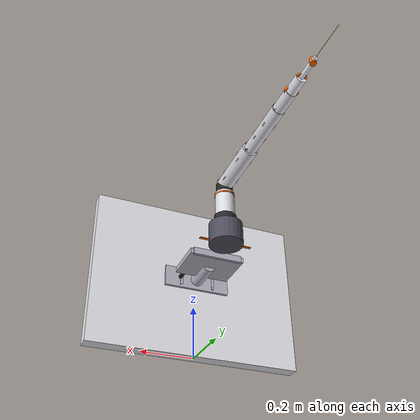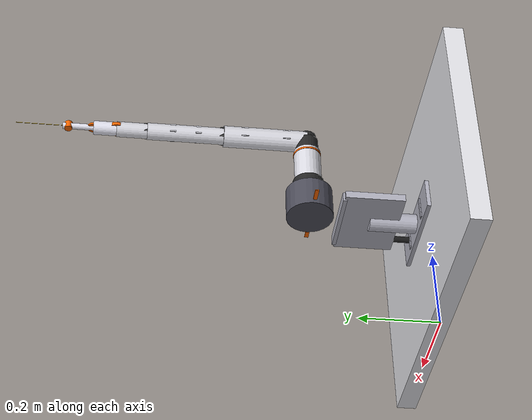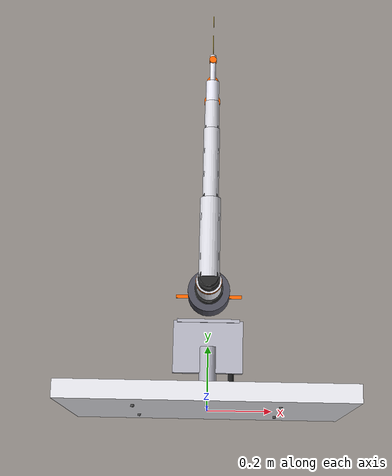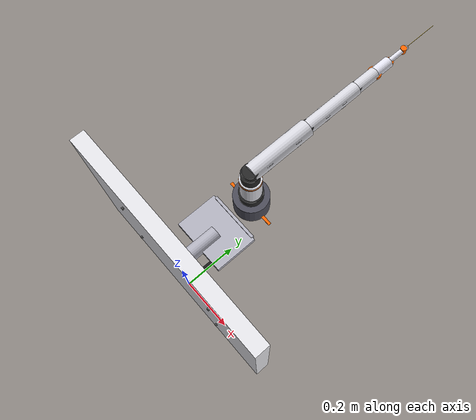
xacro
<?xml version="1.0"?>
<robot xmlns:xacro="http://www.ros.org/wiki/xacro" name="medical_grade_neurosurgical_robot">

  <!-- Properties for easy modification -->
  <xacro:property name="PI" value="3.14159"/>

  <!-- Wall plate properties -->
  <xacro:property name="plate_width" value="0.8"/>
  <xacro:property name="plate_height" value="0.6"/>
  <xacro:property name="plate_thickness" value="0.05"/>

  <!-- Wall mounting properties -->
  <xacro:property name="wall_mount_height" value="0.15"/>
  <xacro:property name="wall_mount_width" value="0.20"/>
  <xacro:property name="wall_mount_depth" value="0.12"/>
  <xacro:property name="wall_bracket_height" value="0.08"/>
  <xacro:property name="wall_bracket_width" value="0.25"/>
  <xacro:property name="wall_bracket_thickness" value="0.02"/>

  <!-- Realistic medical robot proportions -->
  <xacro:property name="base_height" value="0.08"/>
  <xacro:property name="base_radius" value="0.06"/>
  <xacro:property name="base_motor_radius" value="0.04"/>
  <xacro:property name="base_motor_height" value="0.035"/>

  <xacro:property name="shoulder_length" value="0.10"/>
  <xacro:property name="shoulder_radius" value="0.035"/>
  <xacro:property name="shoulder_motor_radius" value="0.03"/>
  <xacro:property name="shoulder_motor_height" value="0.04"/>

  <xacro:property name="upper_arm_length" value="0.22"/>
  <xacro:property name="upper_arm_radius" value="0.028"/>
  <xacro:property name="upper_arm_motor_radius" value="0.025"/>
  <xacro:property name="upper_arm_motor_height" value="0.035"/>

  <xacro:property name="forearm_length" value="0.20"/>
  <xacro:property name="forearm_radius" value="0.022"/>
  <xacro:property name="forearm_motor_radius" value="0.02"/>
  <xacro:property name="forearm_motor_height" value="0.03"/>

  <xacro:property name="wrist_length" value="0.08"/>
  <xacro:property name="wrist_radius" value="0.02"/>
  <xacro:property name="wrist_motor_radius" value="0.018"/>
  <xacro:property name="wrist_motor_height" value="0.025"/>

  <xacro:property name="hand_length" value="0.06"/>
  <xacro:property name="hand_radius" value="0.018"/>
  <xacro:property name="hand_motor_radius" value="0.015"/>
  <xacro:property name="hand_motor_height" value="0.02"/>

  <!-- Tool housing properties (contains the extendable needle) -->
  <xacro:property name="tool_housing_length" value="0.08"/>
  <xacro:property name="tool_housing_radius" value="0.008"/>

  <!-- Needle properties (the extendable 7th DOF) -->
  <xacro:property name="needle_radius" value="0.0005"/>
  <xacro:property name="needle_max_extension" value="0.12"/>

  <!-- Medical-grade materials -->
  <material name="medical_base">
    <color rgba="0.3 0.3 0.35 1.0"/>
  </material>

  <material name="medical_grey">
    <color rgba="0.85 0.85 0.88 1.0"/>
  </material>

  <material name="motor_black">
    <color rgba="0.15 0.15 0.15 1.0"/>
  </material>

  <material name="surgical_steel">
    <color rgba="0.9 0.9 0.95 1.0"/>
  </material>

  <material name="safety_orange">
    <color rgba="1.0 0.4 0.0 1.0"/>
  </material>

  <material name="cable_black">
    <color rgba="0.1 0.1 0.1 1.0"/>
  </material>

  <!-- Needle material (highly visible for safety) -->
  <material name="needle_gold">
    <color rgba="1.0 0.8 0.0 1.0"/>
  </material>

  <!-- Wall mount material -->
  <material name="wall_mount_steel">
    <color rgba="0.7 0.7 0.75 1.0"/>
  </material>

  <!-- Wall plate material -->
  <material name="wall_surface">
    <color rgba="0.9 0.9 0.92 1.0"/>
  </material>

  <material name="mounting_holes">
    <color rgba="0.3 0.3 0.3 1.0"/>
  </material>

  <!-- World Link (FIXED - Wall bottom now sits at grid level) -->
  <link name="world">
    <!-- Main wall plate surface - MOVED UP so bottom sits at Z=0 -->
    <visual>
      <origin xyz="0 0 ${plate_height/2}" rpy="0 0 0"/>
      <geometry>
        <box size="${plate_width} ${plate_thickness} ${plate_height}"/>
      </geometry>
      <material name="wall_surface"/>
    </visual>

    <!-- Mounting holes (decorative) - ADJUSTED for new wall position -->
    <visual>
      <origin xyz="0.2 ${-plate_thickness/2 - 0.002} ${plate_height/2 + 0.15}" rpy="${PI/2} 0 0"/>
      <geometry>
        <cylinder radius="0.005" length="0.008"/>
      </geometry>
      <material name="mounting_holes"/>
    </visual>
    <visual>
      <origin xyz="-0.2 ${-plate_thickness/2 - 0.002} ${plate_height/2 + 0.15}" rpy="${PI/2} 0 0"/>
      <geometry>
        <cylinder radius="0.005" length="0.008"/>
      </geometry>
      <material name="mounting_holes"/>
    </visual>
    <visual>
      <origin xyz="0.2 ${-plate_thickness/2 - 0.002} ${plate_height/2 - 0.15}" rpy="${PI/2} 0 0"/>
      <geometry>
        <cylinder radius="0.005" length="0.008"/>
      </geometry>
      <material name="mounting_holes"/>
    </visual>
    <visual>
      <origin xyz="-0.2 ${-plate_thickness/2 - 0.002} ${plate_height/2 - 0.15}" rpy="${PI/2} 0 0"/>
      <geometry>
        <cylinder radius="0.005" length="0.008"/>
      </geometry>
      <material name="mounting_holes"/>
    </visual>

    <!-- Collision - MOVED UP to match visual -->
    <collision>
      <origin xyz="0 0 ${plate_height/2}" rpy="0 0 0"/>
      <geometry>
        <box size="${plate_width} ${plate_thickness} ${plate_height}"/>
      </geometry>
    </collision>

    <!-- Inertial properties - MOVED UP to match -->
    <inertial>
      <mass value="5.0"/>
      <origin xyz="0 0 ${plate_height/2}" rpy="0 0 0"/>
      <inertia ixx="0.6" ixy="0" ixz="0" iyy="0.88" iyz="0" izz="0.53"/>
    </inertial>
  </link>

  <!-- Wall Bracket Link (Fixed to wall) -->
  <link name="wall_bracket">
    <!-- Main wall bracket plate -->
    <visual>
      <origin xyz="0 0 0" rpy="0 0 0"/>
      <geometry>
        <box size="${wall_bracket_width} ${wall_bracket_thickness} ${wall_bracket_height}"/>
      </geometry>
      <material name="wall_mount_steel"/>
    </visual>
    <!-- Reinforcement ribs -->
    <visual>
      <origin xyz="${wall_bracket_width/4} 0 0" rpy="0 0 0"/>
      <geometry>
        <box size="0.01 ${wall_bracket_thickness + 0.005} ${wall_bracket_height - 0.02}"/>
      </geometry>
      <material name="wall_mount_steel"/>
    </visual>
    <visual>
      <origin xyz="${-wall_bracket_width/4} 0 0" rpy="0 0 0"/>
      <geometry>
        <box size="0.01 ${wall_bracket_thickness + 0.005} ${wall_bracket_height - 0.02}"/>
      </geometry>
      <material name="wall_mount_steel"/>
    </visual>
    <!-- Wall mounting bolts (decorative) -->
    <visual>
      <origin xyz="${wall_bracket_width/3} ${-wall_bracket_thickness/2 - 0.003} ${wall_bracket_height/3}" rpy="${PI/2} 0 0"/>
      <geometry>
        <cylinder radius="0.004" length="0.01"/>
      </geometry>
      <material name="cable_black"/>
    </visual>
    <visual>
      <origin xyz="${-wall_bracket_width/3} ${-wall_bracket_thickness/2 - 0.003} ${wall_bracket_height/3}" rpy="${PI/2} 0 0"/>
      <geometry>
        <cylinder radius="0.004" length="0.01"/>
      </geometry>
      <material name="cable_black"/>
    </visual>
    <visual>
      <origin xyz="${wall_bracket_width/3} ${-wall_bracket_thickness/2 - 0.003} ${-wall_bracket_height/3}" rpy="${PI/2} 0 0"/>
      <geometry>
        <cylinder radius="0.004" length="0.01"/>
      </geometry>
      <material name="cable_black"/>
    </visual>
    <visual>
      <origin xyz="${-wall_bracket_width/3} ${-wall_bracket_thickness/2 - 0.003} ${-wall_bracket_height/3}" rpy="${PI/2} 0 0"/>
      <geometry>
        <cylinder radius="0.004" length="0.01"/>
      </geometry>
      <material name="cable_black"/>
    </visual>
    <collision>
      <origin xyz="0 0 0" rpy="0 0 0"/>
      <geometry>
        <box size="${wall_bracket_width} ${wall_bracket_thickness} ${wall_bracket_height}"/>
      </geometry>
    </collision>
    <inertial>
      <mass value="2.8"/>
      <origin xyz="0 0 0" rpy="0 0 0"/>
      <inertia ixx="0.025" ixy="0" ixz="0" iyy="0.035" iyz="0" izz="0.045"/>
    </inertial>
  </link>

  <!-- Wall Mount Housing Link (Extends from wall) -->
  <link name="wall_mount">
    <!-- Main mounting arm -->
    <visual>
      <origin xyz="0 ${wall_mount_depth/2} 0" rpy="${PI/2} 0 0"/>
      <geometry>
        <cylinder radius="0.025" length="${wall_mount_depth}"/>
      </geometry>
      <material name="wall_mount_steel"/>
    </visual>
    <!-- Mounting platform -->
    <visual>
      <origin xyz="0 ${wall_mount_depth} 0" rpy="0 0 0"/>
      <geometry>
        <box size="${wall_mount_width} ${wall_mount_height} 0.02"/>
      </geometry>
      <material name="wall_mount_steel"/>
    </visual>
    <!-- Platform reinforcement -->
    <visual>
      <origin xyz="0 ${wall_mount_depth + wall_mount_height/2} 0" rpy="0 0 0"/>
      <geometry>
        <box size="${wall_mount_width - 0.02} 0.01 0.025"/>
      </geometry>
      <material name="wall_mount_steel"/>
    </visual>
    <!-- Cable management channel -->
    <visual>
      <origin xyz="${wall_mount_width/3} ${wall_mount_depth/2} 0" rpy="${PI/2} 0 0"/>
      <geometry>
        <cylinder radius="0.008" length="${wall_mount_depth}"/>
      </geometry>
      <material name="cable_black"/>
    </visual>
    <!-- Safety markings -->
    <visual>
      <origin xyz="0 ${wall_mount_depth + wall_mount_height - 0.005} 0.011" rpy="0 0 0"/>
      <geometry>
        <box size="${wall_mount_width - 0.01} 0.01 0.002"/>
      </geometry>
      <material name="safety_orange"/>
    </visual>
    <collision>
      <origin xyz="0 ${wall_mount_depth/2} 0" rpy="0 0 0"/>
      <geometry>
        <box size="${wall_mount_width} ${wall_mount_depth} ${wall_mount_height}"/>
      </geometry>
    </collision>
    <inertial>
      <mass value="4.2"/>
      <origin xyz="0 ${wall_mount_depth/2} 0" rpy="0 0 0"/>
      <inertia ixx="0.045" ixy="0" ixz="0" iyy="0.035" iyz="0" izz="0.065"/>
    </inertial>
  </link>

  <!-- World to Wall Bracket Joint (fixed to wall plate) -->
  <joint name="world_to_wall_bracket" type="fixed">
    <parent link="world"/>
    <child link="wall_bracket"/>
    <origin xyz="0 ${plate_thickness/2} ${plate_height/2}" rpy="0 0 0"/>
  </joint>

  <!-- Wall Bracket to Mount Joint (fixed extension from wall) -->
  <joint name="wall_bracket_to_mount" type="fixed">
    <parent link="wall_bracket"/>
    <child link="wall_mount"/>
    <origin xyz="0 ${wall_bracket_thickness/2} 0" rpy="0 0 0"/>
  </joint>

  <!-- Base Link Assembly (Professional base with motor housing) -->
  <link name="base_link">
    <!-- Main base platform -->
    <visual>
      <origin xyz="0 0 ${base_height/2}" rpy="0 0 0"/>
      <geometry>
        <cylinder radius="${base_radius}" length="${base_height}"/>
      </geometry>
      <material name="medical_base"/>
    </visual>
    <!-- Motor housing on top -->
    <visual>
      <origin xyz="0 0 ${base_height + base_motor_height/2}" rpy="0 0 0"/>
      <geometry>
        <cylinder radius="${base_motor_radius}" length="${base_motor_height}"/>
      </geometry>
      <material name="motor_black"/>
    </visual>
    <!-- Mounting bolts (decorative) -->
    <visual>
      <origin xyz="0.04 0 ${base_height/4}" rpy="0 0 0"/>
      <geometry>
        <cylinder radius="0.003" length="0.01"/>
      </geometry>
      <material name="cable_black"/>
    </visual>
    <visual>
      <origin xyz="-0.04 0 ${base_height/4}" rpy="0 0 0"/>
      <geometry>
        <cylinder radius="0.003" length="0.01"/>
      </geometry>
      <material name="cable_black"/>
    </visual>
    <visual>
      <origin xyz="0 0.04 ${base_height/4}" rpy="0 0 0"/>
      <geometry>
        <cylinder radius="0.003" length="0.01"/>
      </geometry>
      <material name="cable_black"/>
    </visual>
    <visual>
      <origin xyz="0 -0.04 ${base_height/4}" rpy="0 0 0"/>
      <geometry>
        <cylinder radius="0.003" length="0.01"/>
      </geometry>
      <material name="cable_black"/>
    </visual>
    <collision>
      <origin xyz="0 0 ${base_height/2}" rpy="0 0 0"/>
      <geometry>
        <cylinder radius="${base_radius}" length="${base_height}"/>
      </geometry>
    </collision>
    <inertial>
      <mass value="3.5"/>
      <origin xyz="0 0 ${base_height/2}" rpy="0 0 0"/>
      <inertia ixx="0.035" ixy="0" ixz="0" iyy="0.035" iyz="0" izz="0.055"/>
    </inertial>
  </link>

  <!-- Wall Mount to Base Joint (robot mounts on wall platform) -->
  <joint name="wall_mount_to_base" type="fixed">
    <parent link="wall_mount"/>
    <child link="base_link"/>
    <origin xyz="0 ${wall_mount_depth + wall_mount_height} 0" rpy="0 0 0"/>
  </joint>

  <!-- Shoulder Link Assembly -->
  <link name="shoulder_link">
    <!-- Main shoulder structure -->
    <visual>
      <origin xyz="0 0 ${shoulder_length/2}" rpy="0 0 0"/>
      <geometry>
        <cylinder radius="${shoulder_radius}" length="${shoulder_length}"/>
      </geometry>
      <material name="medical_grey"/>
    </visual>
    <!-- Motor housing at top -->
    <visual>
      <origin xyz="0 0 ${shoulder_length + shoulder_motor_height/2}" rpy="0 0 0"/>
      <geometry>
        <cylinder radius="${shoulder_motor_radius}" length="${shoulder_motor_height}"/>
      </geometry>
      <material name="motor_black"/>
    </visual>
    <!-- Cable management -->
    <visual>
      <origin xyz="${shoulder_radius/2} 0 ${shoulder_length/2}" rpy="0 0 0"/>
      <geometry>
        <box size="0.008 0.008 ${shoulder_length}"/>
      </geometry>
      <material name="cable_black"/>
    </visual>
    <!-- Safety stripe -->
    <visual>
      <origin xyz="0 0 ${shoulder_length - 0.01}" rpy="0 0 0"/>
      <geometry>
        <cylinder radius="${shoulder_radius + 0.001}" length="0.005"/>
      </geometry>
      <material name="safety_orange"/>
    </visual>
    <collision>
      <origin xyz="0 0 ${shoulder_length/2}" rpy="0 0 0"/>
      <geometry>
        <cylinder radius="${shoulder_radius}" length="${shoulder_length}"/>
      </geometry>
    </collision>
    <inertial>
      <mass value="1.8"/>
      <origin xyz="0 0 ${shoulder_length/2}" rpy="0 0 0"/>
      <inertia ixx="0.015" ixy="0" ixz="0" iyy="0.015" iyz="0" izz="0.008"/>
    </inertial>
  </link>

  <!-- Joint 1: Shoulder Roll (IDENTICAL movement) -->
  <joint name="shoulder_roll" type="revolute">
    <parent link="base_link"/>
    <child link="shoulder_link"/>
    <origin xyz="0 0 ${base_height + base_motor_height}" rpy="0 0 0"/>
    <axis xyz="0 0 1"/>
    <limit lower="${-PI/2}" upper="${PI/2}" effort="10.0" velocity="1.0"/>
  </joint>

  <!-- Upper Arm Link Assembly (Humerus) -->
  <link name="upper_arm_link">
    <!-- Main upper arm structure -->
    <visual>
      <origin xyz="0 ${upper_arm_length/2} 0" rpy="${PI/2} 0 0"/>
      <geometry>
        <cylinder radius="${upper_arm_radius}" length="${upper_arm_length}"/>
      </geometry>
      <material name="medical_grey"/>
    </visual>
    <!-- Motor housing at shoulder end -->
    <visual>
      <origin xyz="0 0 0" rpy="0 0 0"/>
      <geometry>
        <cylinder radius="${upper_arm_motor_radius}" length="${upper_arm_motor_height}"/>
      </geometry>
      <material name="motor_black"/>
    </visual>
    <!-- Reinforcement plates -->
    <visual>
      <origin xyz="0 ${upper_arm_length/4} 0" rpy="0 0 0"/>
      <geometry>
        <box size="0.05 0.02 0.03"/>
      </geometry>
      <material name="medical_grey"/>
    </visual>
    <visual>
      <origin xyz="0 ${3*upper_arm_length/4} 0" rpy="0 0 0"/>
      <geometry>
        <box size="0.05 0.02 0.03"/>
      </geometry>
      <material name="medical_grey"/>
    </visual>
    <!-- Cable routing -->
    <visual>
      <origin xyz="${upper_arm_radius/2} ${upper_arm_length/2} 0" rpy="${PI/2} 0 0"/>
      <geometry>
        <cylinder radius="0.004" length="${upper_arm_length}"/>
      </geometry>
      <material name="cable_black"/>
    </visual>
    <collision>
      <origin xyz="0 ${upper_arm_length/2} 0" rpy="${PI/2} 0 0"/>
      <geometry>
        <cylinder radius="${upper_arm_radius}" length="${upper_arm_length}"/>
      </geometry>
    </collision>
    <inertial>
      <mass value="2.2"/>
      <origin xyz="0 ${upper_arm_length/2} 0" rpy="0 0 0"/>
      <inertia ixx="0.08" ixy="0" ixz="0" iyy="0.008" iyz="0" izz="0.08"/>
    </inertial>
  </link>

  <!-- Joint 2: Shoulder Pitch (IDENTICAL movement) -->
  <joint name="shoulder_pitch" type="revolute">
    <parent link="shoulder_link"/>
    <child link="upper_arm_link"/>
    <origin xyz="0 0 ${shoulder_length + shoulder_motor_height}" rpy="0 0 0"/>
    <axis xyz="1 0 0"/>
    <limit lower="${-PI/6}" upper="${5*PI/6}" effort="8.0" velocity="1.0"/>
  </joint>

  <!-- Forearm Link Assembly (Radius/Ulna) -->
  <link name="forearm_link">
    <!-- Main forearm structure -->
    <visual>
      <origin xyz="0 ${forearm_length/2} 0" rpy="${PI/2} 0 0"/>
      <geometry>
        <cylinder radius="${forearm_radius}" length="${forearm_length}"/>
      </geometry>
      <material name="medical_grey"/>
    </visual>
    <!-- Motor housing at elbow -->
    <visual>
      <origin xyz="0 0 0" rpy="0 0 0"/>
      <geometry>
        <cylinder radius="${forearm_motor_radius}" length="${forearm_motor_height}"/>
      </geometry>
      <material name="motor_black"/>
    </visual>
    <!-- Structural reinforcement -->
    <visual>
      <origin xyz="0 ${forearm_length/3} 0" rpy="0 0 0"/>
      <geometry>
        <box size="0.04 0.015 0.025"/>
      </geometry>
      <material name="medical_grey"/>
    </visual>
    <visual>
      <origin xyz="0 ${2*forearm_length/3} 0" rpy="0 0 0"/>
      <geometry>
        <box size="0.04 0.015 0.025"/>
      </geometry>
      <material name="medical_grey"/>
    </visual>
    <!-- Cable management -->
    <visual>
      <origin xyz="${forearm_radius/2} ${forearm_length/2} 0" rpy="${PI/2} 0 0"/>
      <geometry>
        <cylinder radius="0.003" length="${forearm_length}"/>
      </geometry>
      <material name="cable_black"/>
    </visual>
    <collision>
      <origin xyz="0 ${forearm_length/2} 0" rpy="${PI/2} 0 0"/>
      <geometry>
        <cylinder radius="${forearm_radius}" length="${forearm_length}"/>
      </geometry>
    </collision>
    <inertial>
      <mass value="1.5"/>
      <origin xyz="0 ${forearm_length/2} 0" rpy="0 0 0"/>
      <inertia ixx="0.05" ixy="0" ixz="0" iyy="0.005" iyz="0" izz="0.05"/>
    </inertial>
  </link>

  <!-- Joint 3: Shoulder Yaw (IDENTICAL movement) -->
  <joint name="shoulder_yaw" type="revolute">
    <parent link="upper_arm_link"/>
    <child link="forearm_link"/>
    <origin xyz="0 ${upper_arm_length} 0" rpy="0 0 0"/>
    <axis xyz="0 0 1"/>
    <limit lower="${-PI/9}" upper="${PI/2}" effort="6.0" velocity="1.0"/>
  </joint>

  <!-- Wrist Link Assembly -->
  <link name="wrist_link">
    <!-- Main wrist structure -->
    <visual>
      <origin xyz="0 ${wrist_length/2} 0" rpy="${PI/2} 0 0"/>
      <geometry>
        <cylinder radius="${wrist_radius}" length="${wrist_length}"/>
      </geometry>
      <material name="medical_grey"/>
    </visual>
    <!-- Motor housing -->
    <visual>
      <origin xyz="0 0 0" rpy="0 0 0"/>
      <geometry>
        <cylinder radius="${wrist_motor_radius}" length="${wrist_motor_height}"/>
      </geometry>
      <material name="motor_black"/>
    </visual>
    <!-- Joint cover -->
    <visual>
      <origin xyz="0 ${wrist_length} 0" rpy="0 0 0"/>
      <geometry>
        <cylinder radius="${wrist_radius + 0.002}" length="0.01"/>
      </geometry>
      <material name="safety_orange"/>
    </visual>
    <collision>
      <origin xyz="0 ${wrist_length/2} 0" rpy="${PI/2} 0 0"/>
      <geometry>
        <cylinder radius="${wrist_radius}" length="${wrist_length}"/>
      </geometry>
    </collision>
    <inertial>
      <mass value="0.8"/>
      <origin xyz="0 ${wrist_length/2} 0" rpy="0 0 0"/>
      <inertia ixx="0.004" ixy="0" ixz="0" iyy="0.002" iyz="0" izz="0.004"/>
    </inertial>
  </link>

  <!-- Joint 4: Elbow Flexion (IDENTICAL movement) -->
  <joint name="elbow_flexion" type="revolute">
    <parent link="forearm_link"/>
    <child link="wrist_link"/>
    <origin xyz="0 ${forearm_length} 0" rpy="0 0 0"/>
    <axis xyz="1 0 0"/>
    <limit lower="${-PI/6}" upper="${5*PI/6}" effort="4.0" velocity="1.0"/>
  </joint>

  <!-- Hand Link Assembly -->
  <link name="hand_link">
    <!-- Main hand structure -->
    <visual>
      <origin xyz="0 ${hand_length/2} 0" rpy="${PI/2} 0 0"/>
      <geometry>
        <cylinder radius="${hand_radius}" length="${hand_length}"/>
      </geometry>
      <material name="surgical_steel"/>
    </visual>
    <!-- Motor housing -->
    <visual>
      <origin xyz="0 0 0" rpy="0 0 0"/>
      <geometry>
        <cylinder radius="${hand_motor_radius}" length="${hand_motor_height}"/>
      </geometry>
      <material name="motor_black"/>
    </visual>
    <!-- Tool interface -->
    <visual>
      <origin xyz="0 ${hand_length} 0" rpy="0 0 0"/>
      <geometry>
        <cylinder radius="${hand_radius - 0.002}" length="0.005"/>
      </geometry>
      <material name="safety_orange"/>
    </visual>
    <collision>
      <origin xyz="0 ${hand_length/2} 0" rpy="${PI/2} 0 0"/>
      <geometry>
        <cylinder radius="${hand_radius}" length="${hand_length}"/>
      </geometry>
    </collision>
    <inertial>
      <mass value="0.4"/>
      <origin xyz="0 ${hand_length/2} 0" rpy="0 0 0"/>
      <inertia ixx="0.001" ixy="0" ixz="0" iyy="0.0008" iyz="0" izz="0.001"/>
    </inertial>
  </link>

  <!-- Joint 5: Wrist Roll (IDENTICAL movement) -->
  <joint name="wrist_roll" type="revolute">
    <parent link="wrist_link"/>
    <child link="hand_link"/>
    <origin xyz="0 ${wrist_length} 0" rpy="0 0 0"/>
    <axis xyz="0 1 0"/>
    <limit lower="${-PI/2}" upper="${PI/2}" effort="2.0" velocity="2.0"/>
  </joint>

  <!-- Tool Housing Link (Contains the needle extension mechanism) -->
  <link name="tool_housing_link">
    <!-- Main tool housing -->
    <visual>
      <origin xyz="0 ${tool_housing_length/2} 0" rpy="${PI/2} 0 0"/>
      <geometry>
        <cylinder radius="${tool_housing_radius}" length="${tool_housing_length}"/>
      </geometry>
      <material name="surgical_steel"/>
    </visual>
    <!-- Housing interface -->
    <visual>
      <origin xyz="0 0.01 0" rpy="${PI/2} 0 0"/>
      <geometry>
        <cylinder radius="0.006" length="0.02"/>
      </geometry>
      <material name="motor_black"/>
    </visual>
    <!-- Extension mechanism housing -->
    <visual>
      <origin xyz="0 ${tool_housing_length - 0.015} 0" rpy="0 0 0"/>
      <geometry>
        <cylinder radius="${tool_housing_radius + 0.002}" length="0.02"/>
      </geometry>
      <material name="safety_orange"/>
    </visual>
    <!-- Needle guide -->
    <visual>
      <origin xyz="0 ${tool_housing_length} 0" rpy="${PI/2} 0 0"/>
      <geometry>
        <cylinder radius="0.001" length="0.005"/>
      </geometry>
      <material name="needle_gold"/>
    </visual>
    <collision>
      <origin xyz="0 ${tool_housing_length/2} 0" rpy="${PI/2} 0 0"/>
      <geometry>
        <cylinder radius="${tool_housing_radius}" length="${tool_housing_length}"/>
      </geometry>
    </collision>
    <inertial>
      <mass value="0.12"/>
      <origin xyz="0 ${tool_housing_length/2} 0" rpy="0 0 0"/>
      <inertia ixx="0.0002" ixy="0" ixz="0" iyy="0.0002" iyz="0" izz="0.00002"/>
    </inertial>
  </link>

  <!-- Joint 6: Wrist Pitch (IDENTICAL movement) -->
  <joint name="wrist_pitch" type="revolute">
    <parent link="hand_link"/>
    <child link="tool_housing_link"/>
    <origin xyz="0 ${hand_length} 0" rpy="0 0 0"/>
    <axis xyz="1 0 0"/>
    <limit lower="${-PI/4}" upper="${PI/4}" effort="1.0" velocity="2.0"/>
  </joint>

  <!-- Needle Link (Dynamic length needle - grows in both directions) -->
  <link name="needle_link">
    <!-- Extended needle rear section (extends much further backward into housing) -->
    <visual>
      <origin xyz="0 -0.06 0" rpy="${PI/2} 0 0"/>
      <geometry>
        <cylinder radius="0.0008" length="0.12"/>
      </geometry>
      <material name="surgical_steel"/>
    </visual>
    <!-- Main needle body (extends forward) -->
    <visual>
      <origin xyz="0 0.06 0" rpy="${PI/2} 0 0"/>
      <geometry>
        <cylinder radius="${needle_radius}" length="0.12"/>
      </geometry>
      <material name="needle_gold"/>
    </visual>
    <!-- Needle tip -->
    <visual>
      <origin xyz="0 0.12 0" rpy="0 0 0"/>
      <geometry>
        <sphere radius="${needle_radius * 1.5}"/>
      </geometry>
      <material name="needle_gold"/>
    </visual>
    <!-- Connection piece (always at housing exit) -->
    <visual>
      <origin xyz="0 0.001 0" rpy="${PI/2} 0 0"/>
      <geometry>
        <cylinder radius="0.001" length="0.002"/>
      </geometry>
      <material name="safety_orange"/>
    </visual>
    <collision>
      <origin xyz="0 0.03 0" rpy="${PI/2} 0 0"/>
      <geometry>
        <cylinder radius="0.001" length="0.18"/>
      </geometry>
    </collision>
    <inertial>
      <mass value="0.006"/>
      <origin xyz="0 0.03 0" rpy="0 0 0"/>
      <inertia ixx="0.000006" ixy="0" ixz="0" iyy="0.000001" iyz="0" izz="0.000006"/>
    </inertial>
  </link>

  <!-- Joint 7: Needle Extension (NEW 7th DOF - Prismatic) -->
  <!-- The needle grows in both directions: -->
  <!-- - Forward: for surgical reach -->
  <!-- - Backward: to maintain connection with housing mechanism -->
  <joint name="needle_extension" type="prismatic">
    <parent link="tool_housing_link"/>
    <child link="needle_link"/>
    <origin xyz="0 ${tool_housing_length} 0" rpy="0 0 0"/>
    <axis xyz="0 1 0"/>
    <limit lower="0.0" upper="${needle_max_extension}" effort="5.0" velocity="0.05"/>
  </joint>

  <!-- Needle Tip Frame (for precise neurosurgical targeting) -->
  <link name="needle_tip"/>
  <joint name="needle_tip_joint" type="fixed">
    <parent link="needle_link"/>
    <child link="needle_tip"/>
    <origin xyz="0 0.12 0" rpy="0 0 0"/>
  </joint>

</robot>
